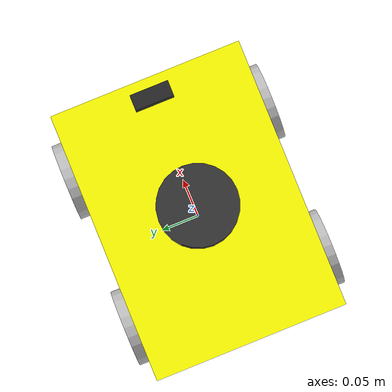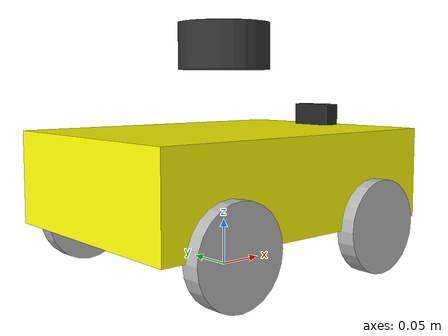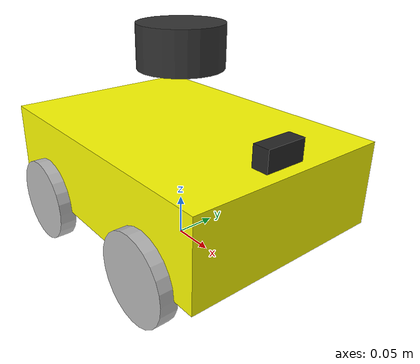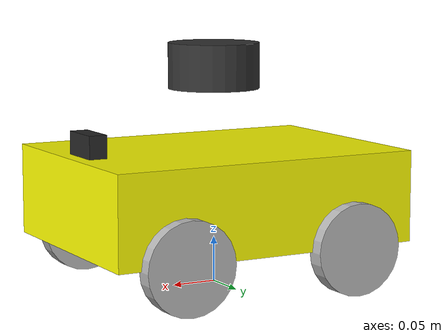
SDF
<?xml version="1.0" ?>
<sdf version="1.10">
  <model name="rubot_mecanum">
    <static>false</static>

    <!-- Pose inicial -->
    <pose>0 0 0 0 0 0</pose>

    <!-- Base -->
    <link name="base_link">
      <pose>0 0 0.10 0 0 0</pose>
      <inertial>
        <mass>5.0</mass>
        <inertia>
          <ixx>0.10</ixx><iyy>0.10</iyy><izz>0.10</izz>
          <ixy>0</ixy><ixz>0</ixz><iyz>0</iyz>
        </inertia>
      </inertial>

      <collision name="base_collision">
        <geometry>
          <box><size>0.35 0.25 0.10</size></box>
        </geometry>
      </collision>

      <visual name="base_visual">
        <geometry>
          <box><size>0.35 0.25 0.10</size></box>
        </geometry>
        <material>
          <ambient>1 1 0 1</ambient>
          <diffuse>1 1 0 1</diffuse>
        </material>
      </visual>

      <!-- Helps reduce coasting -->
      <velocity_decay>
        <linear>0.5</linear>
        <angular>0.6</angular>
      </velocity_decay>
    </link>

    <!-- =========================================================
         Wheels
         ========================================================= -->

    <!-- Shared wheel contact tuning (apply same mu/mu2/slip; only fdir1 changes) -->
    <!-- Recommended baseline: responsive but not too sticky -->
    <!-- mu: low along fdir1 (roller direction) -->
    <!-- mu2: higher perpendicular to fdir1 (traction direction) -->

    <!-- Upper left (front-left) -->
    <link name="upper_left_wheel">
      <pose>0.10 0.13 0.05 0 0 0</pose>
      <inertial>
        <mass>0.5</mass>
        <inertia>
          <ixx>0.001</ixx><iyy>0.001</iyy><izz>0.001</izz>
          <ixy>0</ixy><ixz>0</ixz><iyz>0</iyz>
        </inertia>
      </inertial>

      <collision name="upper_left_wheel_collision">
        <pose>0 0 0 1.57 0 0</pose>
        <geometry>
          <cylinder><radius>0.05</radius><length>0.02</length></cylinder>
        </geometry>
        <surface>
          <friction>
            <ode>
              <fdir1>0.707 -0.707 0</fdir1>
              <mu>0.05</mu>
              <mu2>2.0</mu2>
              <slip1>0.003</slip1>
              <slip2>0.0002</slip2>
            </ode>
          </friction>
        </surface>
      </collision>

      <visual name="upper_left_wheel_visual">
        <pose>0 0 0 1.57 0 0</pose>
        <geometry>
          <cylinder><radius>0.05</radius><length>0.02</length></cylinder>
        </geometry>
      </visual>
    </link>

    <joint name="upper_left_wheel_joint" type="revolute">
      <parent>base_link</parent>
      <child>upper_left_wheel</child>
      <axis>
        <xyz>0 1 0</xyz>
        <limit>
          <lower>-1e16</lower><upper>1e16</upper>
          <effort>50</effort><velocity>100</velocity>
        </limit>
        <dynamics>
          <damping>0.3</damping>
          <friction>0.2</friction>
        </dynamics>
      </axis>
    </joint>

    <!-- Upper right (front-right) -->
    <link name="upper_right_wheel">
      <pose>0.10 -0.13 0.05 0 0 0</pose>
      <inertial>
        <mass>0.5</mass>
        <inertia>
          <ixx>0.001</ixx><iyy>0.001</iyy><izz>0.001</izz>
          <ixy>0</ixy><ixz>0</ixz><iyz>0</iyz>
        </inertia>
      </inertial>

      <collision name="upper_right_wheel_collision">
        <pose>0 0 0 1.57 0 0</pose>
        <geometry>
          <cylinder><radius>0.05</radius><length>0.02</length></cylinder>
        </geometry>
        <surface>
          <friction>
            <ode>
              <fdir1>0.707 0.707 0</fdir1>
              <mu>0.05</mu>
              <mu2>2.0</mu2>
              <slip1>0.003</slip1>
              <slip2>0.0002</slip2>
            </ode>
          </friction>
        </surface>
      </collision>

      <visual name="upper_right_wheel_visual">
        <pose>0 0 0 1.57 0 0</pose>
        <geometry>
          <cylinder><radius>0.05</radius><length>0.02</length></cylinder>
        </geometry>
      </visual>
    </link>

    <joint name="upper_right_wheel_joint" type="revolute">
      <parent>base_link</parent>
      <child>upper_right_wheel</child>
      <axis>
        <xyz>0 1 0</xyz>
        <limit>
          <lower>-1e16</lower><upper>1e16</upper>
          <effort>50</effort><velocity>100</velocity>
        </limit>
        <dynamics>
          <damping>0.3</damping>
          <friction>0.2</friction>
        </dynamics>
      </axis>
    </joint>

    <!-- Lower left (rear-left) -->
    <link name="lower_left_wheel">
      <pose>-0.10 0.13 0.05 0 0 0</pose>
      <inertial>
        <mass>0.5</mass>
        <inertia>
          <ixx>0.001</ixx><iyy>0.001</iyy><izz>0.001</izz>
          <ixy>0</ixy><ixz>0</ixz><iyz>0</iyz>
        </inertia>
      </inertial>

      <collision name="lower_left_wheel_collision">
        <pose>0 0 0 1.57 0 0</pose>
        <geometry>
          <cylinder><radius>0.05</radius><length>0.02</length></cylinder>
        </geometry>
        <surface>
          <friction>
            <ode>
              <fdir1>0.707 0.707 0</fdir1>
              <mu>0.05</mu>
              <mu2>2.0</mu2>
              <slip1>0.003</slip1>
              <slip2>0.0002</slip2>
            </ode>
          </friction>
        </surface>
      </collision>

      <visual name="lower_left_wheel_visual">
        <pose>0 0 0 1.57 0 0</pose>
        <geometry>
          <cylinder><radius>0.05</radius><length>0.02</length></cylinder>
        </geometry>
      </visual>
    </link>

    <joint name="lower_left_wheel_joint" type="revolute">
      <parent>base_link</parent>
      <child>lower_left_wheel</child>
      <axis>
        <xyz>0 1 0</xyz>
        <limit>
          <lower>-1e16</lower><upper>1e16</upper>
          <effort>50</effort><velocity>100</velocity>
        </limit>
        <dynamics>
          <damping>0.3</damping>
          <friction>0.2</friction>
        </dynamics>
      </axis>
    </joint>

    <!-- Lower right (rear-right) -->
    <link name="lower_right_wheel">
      <pose>-0.10 -0.13 0.05 0 0 0</pose>
      <inertial>
        <mass>0.5</mass>
        <inertia>
          <ixx>0.001</ixx><iyy>0.001</iyy><izz>0.001</izz>
          <ixy>0</ixy><ixz>0</ixz><iyz>0</iyz>
        </inertia>
      </inertial>

      <collision name="lower_right_wheel_collision">
        <pose>0 0 0 1.57 0 0</pose>
        <geometry>
          <cylinder><radius>0.05</radius><length>0.02</length></cylinder>
        </geometry>
        <surface>
          <friction>
            <ode>
              <fdir1>0.707 -0.707 0</fdir1>
              <mu>0.05</mu>
              <mu2>2.0</mu2>
              <slip1>0.003</slip1>
              <slip2>0.0002</slip2>
            </ode>
          </friction>
        </surface>
      </collision>

      <visual name="lower_right_wheel_visual">
        <pose>0 0 0 1.57 0 0</pose>
        <geometry>
          <cylinder><radius>0.05</radius><length>0.02</length></cylinder>
        </geometry>
      </visual>
    </link>

    <joint name="lower_right_wheel_joint" type="revolute">
      <parent>base_link</parent>
      <child>lower_right_wheel</child>
      <axis>
        <xyz>0 1 0</xyz>
        <limit>
          <lower>-1e16</lower><upper>1e16</upper>
          <effort>50</effort><velocity>100</velocity>
        </limit>
        <dynamics>
          <damping>0.3</damping>
          <friction>0.2</friction>
        </dynamics>
      </axis>
    </joint>

    <!-- =========================
         Lidar
         ========================= -->
    <link name="base_scan">
      <pose relative_to="base_link">0 0 0.14 0 0 0</pose>

      <visual name="lidar_visual">
        <geometry>
          <cylinder><radius>0.05</radius><length>0.05</length></cylinder>
        </geometry>
        <material>
          <ambient>0.2 0.2 0.2 1</ambient>
          <diffuse>0.2 0.2 0.2 1</diffuse>
        </material>
      </visual>

      <sensor name="lidar" type="gpu_lidar">
        <always_on>true</always_on>
        <update_rate>10</update_rate>
        <topic>/scan</topic>
        <pose>0 0 0 0 0 0</pose>

        <lidar>
          <scan>
            <horizontal>
              <samples>360</samples>
              <resolution>1</resolution>
              <min_angle>-3.14159</min_angle>
              <max_angle>3.14159</max_angle>
            </horizontal>
          </scan>

          <range>
            <min>0.12</min>
            <max>10.0</max>
            <resolution>0.01</resolution>
          </range>

          <noise>
            <type>gaussian</type>
            <mean>0.0</mean>
            <stddev>0.0</stddev>
          </noise>
        </lidar>
      </sensor>
    </link>

    <joint name="base_scan_joint" type="fixed">
      <parent>base_link</parent>
      <child>base_scan</child>
    </joint>

    <!-- =========================
         Camera
         ========================= -->
    <link name="camera_link">
      <pose relative_to="base_link">0.15 0 0.06 0 0 0</pose>

      <visual name="camera_visual">
        <geometry>
          <box><size>0.02 0.05 0.03</size></box>
        </geometry>
        <material>
          <ambient>0.15 0.15 0.15 1</ambient>
          <diffuse>0.15 0.15 0.15 1</diffuse>
        </material>
      </visual>

      <sensor name="camera" type="camera">
        <always_on>true</always_on>
        <update_rate>30</update_rate>

        <camera>
          <horizontal_fov>1.3962634</horizontal_fov>
          <image>
            <width>640</width>
            <height>480</height>
            <format>R8G8B8</format>
          </image>
          <clip>
            <near>0.05</near>
            <far>50</far>
          </clip>
        </camera>

        <topic>/camera</topic>
      </sensor>
    </link>

    <joint name="camera_joint" type="fixed">
      <parent>base_link</parent>
      <child>camera_link</child>
    </joint>

    <!-- Mecanum drive -->
    <plugin name="gz::sim::systems::MecanumDrive"
            filename="gz-sim-mecanum-drive-system">
      <topic>/cmd_vel</topic>
      <front_left_joint>upper_left_wheel_joint</front_left_joint>
      <front_right_joint>upper_right_wheel_joint</front_right_joint>
      <back_left_joint>lower_left_wheel_joint</back_left_joint>
      <back_right_joint>lower_right_wheel_joint</back_right_joint>

      <wheelbase>0.20</wheelbase>
      <wheel_separation>0.26</wheel_separation>
      <wheel_radius>0.05</wheel_radius>

      <odom_topic>/odom</odom_topic>
      <odom_publish_frequency>50</odom_publish_frequency>
      <frame_id>odom</frame_id>
      <child_frame_id>base_link</child_frame_id>
    </plugin>

  </model>
</sdf>
